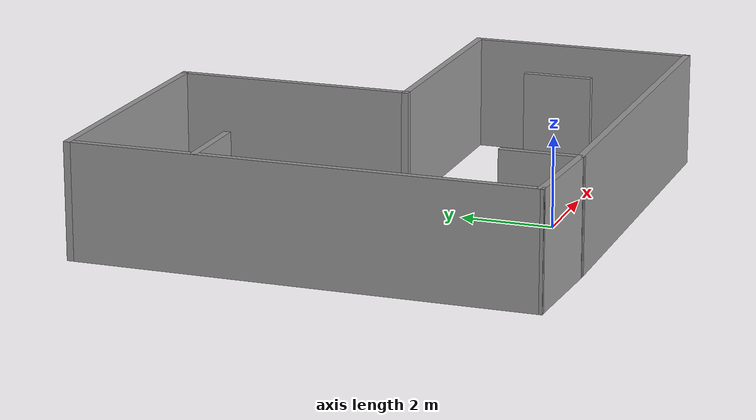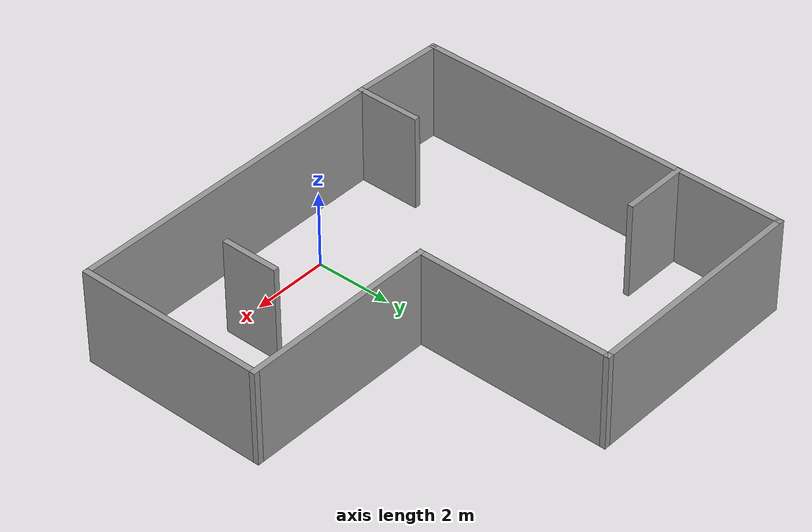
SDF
<?xml version='1.0'?>
<sdf version='1.7'>
  <model name='my_world4'>
    <pose>0.13344 3.55344 0 0 -0 0</pose>
    <link name='Wall_0'>
      <collision name='Wall_0_Collision'>
        <geometry>
          <box>
            <size>8.75 0.15 2.5</size>
          </box>
        </geometry>
        <pose>0 0 1.25 0 -0 0</pose>
      </collision>
      <visual name='Wall_0_Visual'>
        <pose>0 0 1.25 0 -0 0</pose>
        <geometry>
          <box>
            <size>8.75 0.15 2.5</size>
          </box>
        </geometry>
        <material>
          <script>
            <uri>file://media/materials/scripts/gazebo.material</uri>
            <name>Gazebo/Grey</name>
          </script>
          <ambient>1 1 1 1</ambient>
        </material>
        <meta>
          <layer>0</layer>
        </meta>
      </visual>
      <pose>1.17656 -4.97344 0 0 -0 0</pose>
    </link>
    <link name='Wall_1'>
      <collision name='Wall_1_Collision'>
        <geometry>
          <box>
            <size>5 0.15 2.5</size>
          </box>
        </geometry>
        <pose>0 0 1.25 0 -0 0</pose>
      </collision>
      <visual name='Wall_1_Visual'>
        <pose>0 0 1.25 0 -0 0</pose>
        <geometry>
          <box>
            <size>5 0.15 2.5</size>
          </box>
        </geometry>
        <material>
          <script>
            <uri>file://media/materials/scripts/gazebo.material</uri>
            <name>Gazebo/Grey</name>
          </script>
          <ambient>1 1 1 1</ambient>
        </material>
        <meta>
          <layer>0</layer>
        </meta>
      </visual>
      <pose>5.47656 -2.54844 0 0 -0 1.5708</pose>
    </link>
    <link name='Wall_10'>
      <collision name='Wall_10_Collision'>
        <geometry>
          <box>
            <size>1.75 0.15 2.5</size>
          </box>
        </geometry>
        <pose>0 0 1.25 0 -0 0</pose>
      </collision>
      <visual name='Wall_10_Visual'>
        <pose>0 0 1.25 0 -0 0</pose>
        <geometry>
          <box>
            <size>1.75 0.15 2.5</size>
          </box>
        </geometry>
        <material>
          <script>
            <uri>file://media/materials/scripts/gazebo.material</uri>
            <name>Gazebo/Grey</name>
          </script>
          <ambient>1 1 1 1</ambient>
        </material>
        <meta>
          <layer>0</layer>
        </meta>
      </visual>
      <pose>-4.65397 2.2457 0 0 -0 0</pose>
    </link>
    <link name='Wall_12'>
      <collision name='Wall_12_Collision'>
        <geometry>
          <box>
            <size>1.75 0.15 2.5</size>
          </box>
        </geometry>
        <pose>0 0 1.25 0 -0 0</pose>
      </collision>
      <visual name='Wall_12_Visual'>
        <pose>0 0 1.25 0 -0 0</pose>
        <geometry>
          <box>
            <size>1.75 0.15 2.5</size>
          </box>
        </geometry>
        <material>
          <script>
            <uri>file://media/materials/scripts/gazebo.material</uri>
            <name>Gazebo/Grey</name>
          </script>
          <ambient>1 1 1 1</ambient>
        </material>
        <meta>
          <layer>0</layer>
        </meta>
      </visual>
      <pose>-3.12344 -4.17344 0 0 -0 1.5708</pose>
    </link>
    <link name='Wall_14'>
      <collision name='Wall_14_Collision'>
        <geometry>
          <box>
            <size>1.5 0.15 2.5</size>
          </box>
        </geometry>
        <pose>0 0 1.25 0 -0 0</pose>
      </collision>
      <visual name='Wall_14_Visual'>
        <pose>0 0 1.25 0 -0 0</pose>
        <geometry>
          <box>
            <size>1.5 0.15 2.5</size>
          </box>
        </geometry>
        <material>
          <script>
            <uri>file://media/materials/scripts/gazebo.material</uri>
            <name>Gazebo/Grey</name>
          </script>
          <ambient>1 1 1 1</ambient>
        </material>
        <meta>
          <layer>0</layer>
        </meta>
      </visual>
      <pose>2.81271 -2.77383 0 0 -0 -1.5708</pose>
    </link>
    <link name='Wall_2'>
      <collision name='Wall_2_Collision'>
        <geometry>
          <box>
            <size>5.25 0.15 2.5</size>
          </box>
        </geometry>
        <pose>0 0 1.25 0 -0 0</pose>
      </collision>
      <visual name='Wall_2_Visual'>
        <pose>0 0 1.25 0 -0 0</pose>
        <geometry>
          <box>
            <size>5.25 0.15 2.5</size>
          </box>
        </geometry>
        <material>
          <script>
            <uri>file://media/materials/scripts/gazebo.material</uri>
            <name>Gazebo/Grey</name>
          </script>
          <ambient>1 1 1 1</ambient>
        </material>
        <meta>
          <layer>0</layer>
        </meta>
      </visual>
      <pose>2.92656 -0.12344 0 0 -0 3.14159</pose>
    </link>
    <link name='Wall_3'>
      <collision name='Wall_3_Collision'>
        <geometry>
          <box>
            <size>5.25 0.15 2.5</size>
          </box>
        </geometry>
        <pose>0 0 1.25 0 -0 0</pose>
      </collision>
      <visual name='Wall_3_Visual'>
        <pose>0 0 1.25 0 -0 0</pose>
        <geometry>
          <box>
            <size>5.25 0.15 2.5</size>
          </box>
        </geometry>
        <material>
          <script>
            <uri>file://media/materials/scripts/gazebo.material</uri>
            <name>Gazebo/Grey</name>
          </script>
          <ambient>1 1 1 1</ambient>
        </material>
        <meta>
          <layer>0</layer>
        </meta>
      </visual>
      <pose>0.37656 2.42656 0 0 -0 1.5708</pose>
    </link>
    <link name='Wall_4'>
      <collision name='Wall_4_Collision'>
        <geometry>
          <box>
            <size>6 0.15 2.5</size>
          </box>
        </geometry>
        <pose>0 0 1.25 0 -0 0</pose>
      </collision>
      <visual name='Wall_4_Visual'>
        <pose>0 0 1.25 0 -0 0</pose>
        <geometry>
          <box>
            <size>6 0.15 2.5</size>
          </box>
        </geometry>
        <material>
          <script>
            <uri>file://media/materials/scripts/gazebo.material</uri>
            <name>Gazebo/Grey</name>
          </script>
          <ambient>1 1 1 1</ambient>
        </material>
        <meta>
          <layer>0</layer>
        </meta>
      </visual>
      <pose>-2.54844 4.97656 0 0 -0 3.14159</pose>
    </link>
    <link name='Wall_5'>
      <collision name='Wall_5_Collision'>
        <geometry>
          <box>
            <size>10 0.15 2.5</size>
          </box>
        </geometry>
        <pose>0 0 1.25 0 -0 0</pose>
      </collision>
      <visual name='Wall_5_Visual'>
        <pose>0 0 1.25 0 -0 0</pose>
        <geometry>
          <box>
            <size>10 0.15 2.5</size>
          </box>
        </geometry>
        <material>
          <script>
            <uri>file://media/materials/scripts/gazebo.material</uri>
            <name>Gazebo/Grey</name>
          </script>
          <ambient>1 1 1 1</ambient>
        </material>
        <meta>
          <layer>0</layer>
        </meta>
      </visual>
      <pose>-5.47344 0.05156 0 0 -0 -1.5708</pose>
    </link>
    <link name='Wall_6'>
      <collision name='Wall_6_Collision'>
        <geometry>
          <box>
            <size>0.15 0.15 2.5</size>
          </box>
        </geometry>
        <pose>0 0 1.25 0 -0 0</pose>
      </collision>
      <visual name='Wall_6_Visual'>
        <pose>0 0 1.25 0 -0 0</pose>
        <geometry>
          <box>
            <size>0.15 0.15 2.5</size>
          </box>
        </geometry>
        <material>
          <script>
            <uri>file://media/materials/scripts/gazebo.material</uri>
            <name>Gazebo/Grey</name>
          </script>
          <ambient>1 1 1 1</ambient>
        </material>
        <meta>
          <layer>0</layer>
        </meta>
      </visual>
      <pose>-5.47344 -4.87344 0 0 -0 0</pose>
    </link>
    <link name='Wall_7'>
      <collision name='Wall_7_Collision'>
        <geometry>
          <box>
            <size>0.15 0.15 2.5</size>
          </box>
        </geometry>
        <pose>0 0 1.25 0 -0 0</pose>
      </collision>
      <visual name='Wall_7_Visual'>
        <pose>0 0 1.25 0 -0 0</pose>
        <geometry>
          <box>
            <size>0.15 0.15 2.5</size>
          </box>
        </geometry>
        <material>
          <script>
            <uri>file://media/materials/scripts/gazebo.material</uri>
            <name>Gazebo/Grey</name>
          </script>
          <ambient>1 1 1 1</ambient>
        </material>
        <meta>
          <layer>0</layer>
        </meta>
      </visual>
      <pose>-5.47344 -4.87344 0 0 -0 0</pose>
    </link>
    <link name='Wall_8'>
      <collision name='Wall_8_Collision'>
        <geometry>
          <box>
            <size>2.50213 0.15 2.5</size>
          </box>
        </geometry>
        <pose>0 0 1.25 0 -0 0</pose>
      </collision>
      <visual name='Wall_8_Visual'>
        <pose>0 0 1.25 0 -0 0</pose>
        <geometry>
          <box>
            <size>2.50213 0.15 2.5</size>
          </box>
        </geometry>
        <material>
          <script>
            <uri>file://media/materials/scripts/gazebo.material</uri>
            <name>Gazebo/Grey</name>
          </script>
          <ambient>1 1 1 1</ambient>
        </material>
        <meta>
          <layer>0</layer>
        </meta>
      </visual>
      <pose>-4.29844 -4.92344 0 0 -0 -0.042528</pose>
    </link>
    <static>1</static>
  </model>
</sdf>
